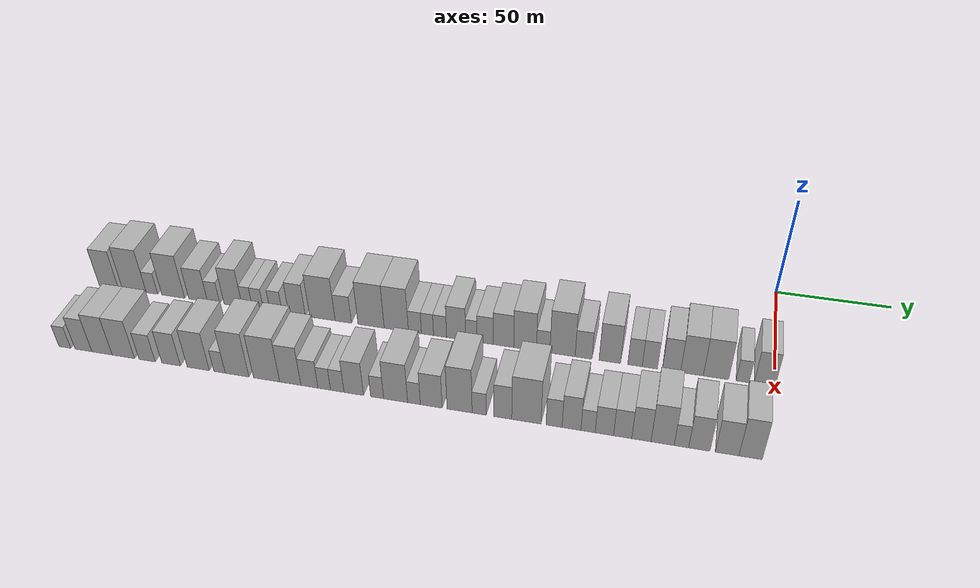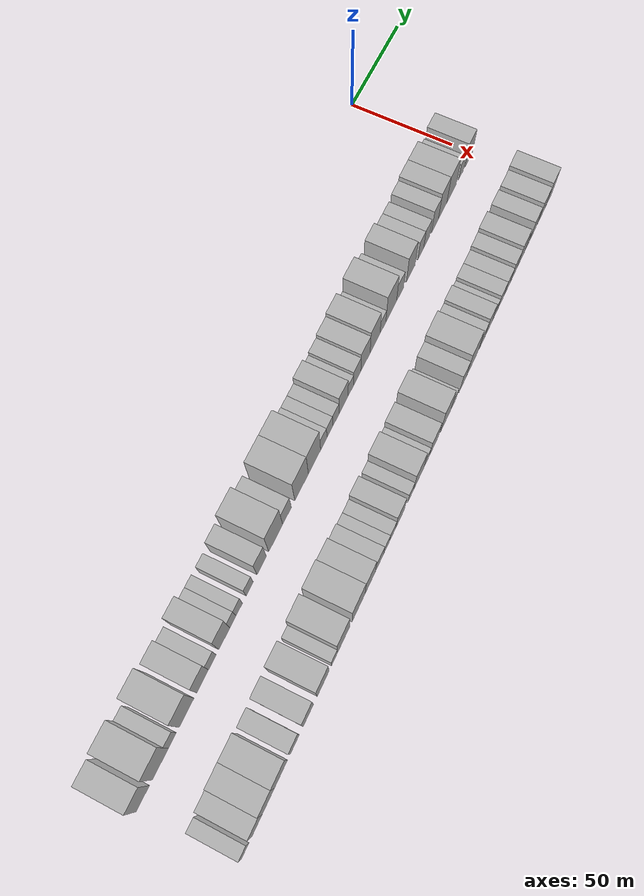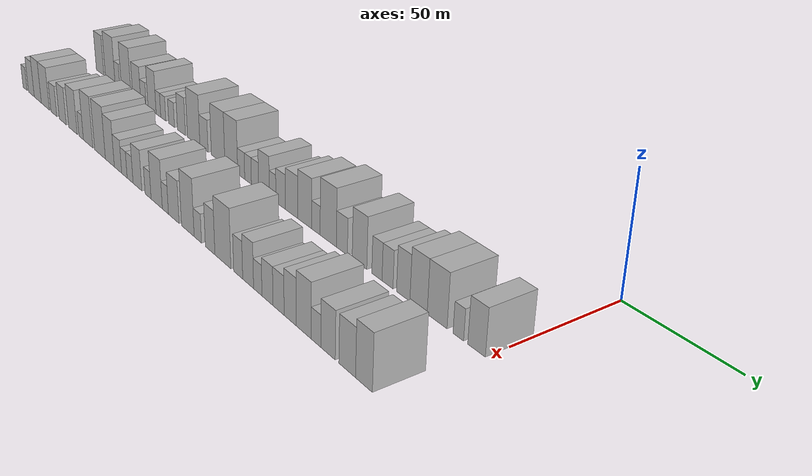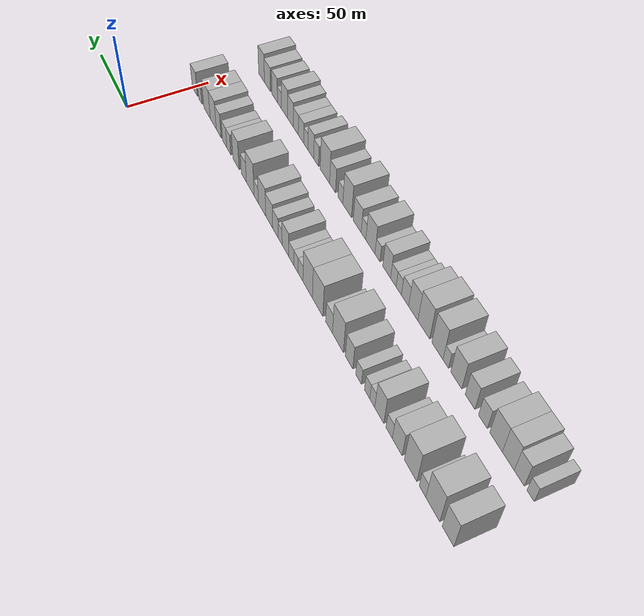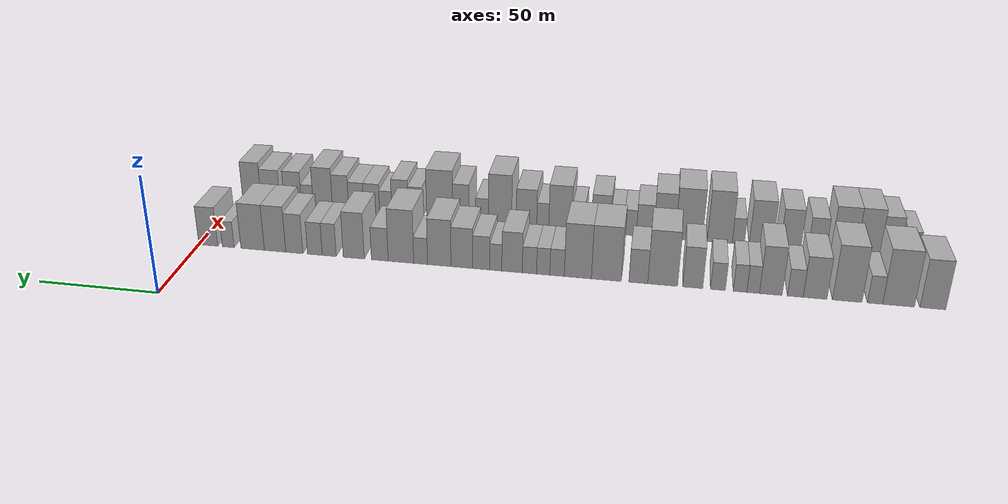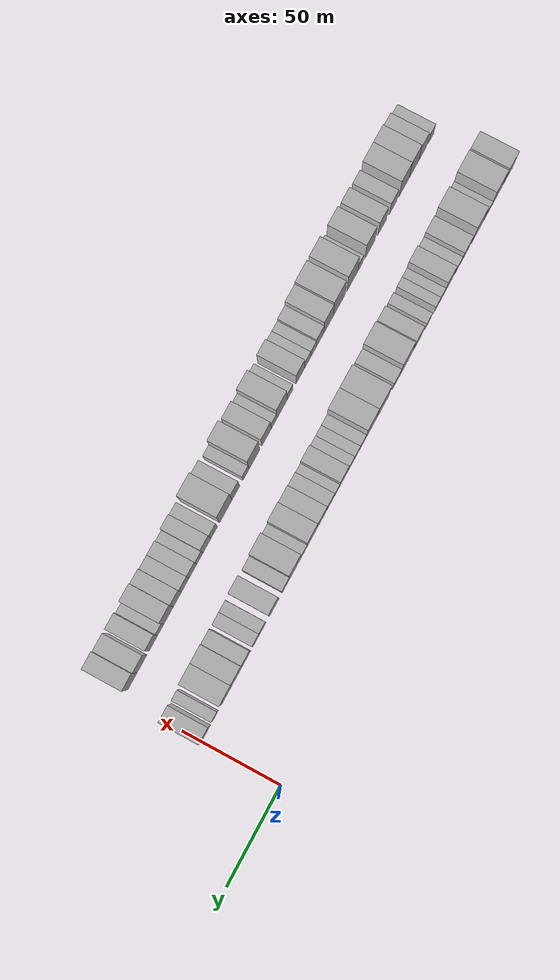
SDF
<sdf version="1.6">
 <world name="default">
  <model name="building_1">
   <static>1</static>
   <pose>50.0000 -295.3175 0 0.000000 0.000000 0.000000</pose>
   <link name="link">
    <pose>0 0 10.50 0 0 0</pose>
    <collision name="collision"><geometry><box><size>20.0000 9.3650 21.0000</size></box></geometry></collision>
    <visual name="visual">
     <cast_shadows>0</cast_shadows>
     <geometry><box><size>20.0000 9.3650 21.0000</size></box></geometry>
     <material>
      <script>
       <uri>model://HANNAS_wall/materials/scripts</uri>
       <uri>model://HANNAS_wall/materials/textures</uri>
       <name>vrc/HANNAS_wall</name>
      </script>
     </material>
    </visual>
   </link>
  </model>
  <model name="building_2">
   <static>1</static>
   <pose>50.0000 -282.8107 0 0.000000 0.000000 0.000000</pose>
   <link name="link">
    <pose>0 0 12.00 0 0 0</pose>
    <collision name="collision"><geometry><box><size>20.0000 11.6486 24.0000</size></box></geometry></collision>
    <visual name="visual">
     <cast_shadows>0</cast_shadows>
     <geometry><box><size>20.0000 11.6486 24.0000</size></box></geometry>
     <material>
      <script>
       <uri>model://HANNAS_wall/materials/scripts</uri>
       <uri>model://HANNAS_wall/materials/textures</uri>
       <name>vrc/HANNAS_wall</name>
      </script>
     </material>
    </visual>
   </link>
  </model>
  <model name="building_3">
   <static>1</static>
   <pose>50.0000 -274.1890 0 0.000000 0.000000 0.000000</pose>
   <link name="link">
    <pose>0 0 6.00 0 0 0</pose>
    <collision name="collision"><geometry><box><size>20.0000 5.5949 12.0000</size></box></geometry></collision>
    <visual name="visual">
     <cast_shadows>0</cast_shadows>
     <geometry><box><size>20.0000 5.5949 12.0000</size></box></geometry>
     <material>
      <script>
       <uri>model://HANNAS_wall/materials/scripts</uri>
       <uri>model://HANNAS_wall/materials/textures</uri>
       <name>vrc/HANNAS_wall</name>
      </script>
     </material>
    </visual>
   </link>
  </model>
  <model name="building_4">
   <static>1</static>
   <pose>50.0000 -263.8913 0 0.000000 0.000000 0.000000</pose>
   <link name="link">
    <pose>0 0 12.00 0 0 0</pose>
    <collision name="collision"><geometry><box><size>20.0000 11.0005 24.0000</size></box></geometry></collision>
    <visual name="visual">
     <cast_shadows>0</cast_shadows>
     <geometry><box><size>20.0000 11.0005 24.0000</size></box></geometry>
     <material>
      <script>
       <uri>model://HANNAS_wall/materials/scripts</uri>
       <uri>model://HANNAS_wall/materials/textures</uri>
       <name>vrc/HANNAS_wall</name>
      </script>
     </material>
    </visual>
   </link>
  </model>
  <model name="building_5">
   <static>1</static>
   <pose>50.0000 -251.9345 0 0.000000 0.000000 0.000000</pose>
   <link name="link">
    <pose>0 0 9.00 0 0 0</pose>
    <collision name="collision"><geometry><box><size>20.0000 8.9130 18.0000</size></box></geometry></collision>
    <visual name="visual">
     <cast_shadows>0</cast_shadows>
     <geometry><box><size>20.0000 8.9130 18.0000</size></box></geometry>
     <material>
      <script>
       <uri>model://HANNAS_wall/materials/scripts</uri>
       <uri>model://HANNAS_wall/materials/textures</uri>
       <name>vrc/HANNAS_wall</name>
      </script>
     </material>
    </visual>
   </link>
  </model>
  <model name="building_6">
   <static>1</static>
   <pose>50.0000 -244.5130 0 0.000000 0.000000 0.000000</pose>
   <link name="link">
    <pose>0 0 6.00 0 0 0</pose>
    <collision name="collision"><geometry><box><size>20.0000 5.9301 12.0000</size></box></geometry></collision>
    <visual name="visual">
     <cast_shadows>0</cast_shadows>
     <geometry><box><size>20.0000 5.9301 12.0000</size></box></geometry>
     <material>
      <script>
       <uri>model://HANNAS_wall/materials/scripts</uri>
       <uri>model://HANNAS_wall/materials/textures</uri>
       <name>vrc/HANNAS_wall</name>
      </script>
     </material>
    </visual>
   </link>
  </model>
  <model name="building_7">
   <static>1</static>
   <pose>50.0000 -235.2398 0 0.000000 0.000000 0.000000</pose>
   <link name="link">
    <pose>0 0 10.50 0 0 0</pose>
    <collision name="collision"><geometry><box><size>20.0000 8.6164 21.0000</size></box></geometry></collision>
    <visual name="visual">
     <cast_shadows>0</cast_shadows>
     <geometry><box><size>20.0000 8.6164 21.0000</size></box></geometry>
     <material>
      <script>
       <uri>model://HANNAS_wall/materials/scripts</uri>
       <uri>model://HANNAS_wall/materials/textures</uri>
       <name>vrc/HANNAS_wall</name>
      </script>
     </material>
    </visual>
   </link>
  </model>
  <model name="building_8">
   <static>1</static>
   <pose>50.0000 -228.5288 0 0.000000 0.000000 0.000000</pose>
   <link name="link">
    <pose>0 0 6.00 0 0 0</pose>
    <collision name="collision"><geometry><box><size>20.0000 4.8055 12.0000</size></box></geometry></collision>
    <visual name="visual">
     <cast_shadows>0</cast_shadows>
     <geometry><box><size>20.0000 4.8055 12.0000</size></box></geometry>
     <material>
      <script>
       <uri>model://HANNAS_wall/materials/scripts</uri>
       <uri>model://HANNAS_wall/materials/textures</uri>
       <name>vrc/HANNAS_wall</name>
      </script>
     </material>
    </visual>
   </link>
  </model>
  <model name="building_9">
   <static>1</static>
   <pose>50.0000 -223.5332 0 0.000000 0.000000 0.000000</pose>
   <link name="link">
    <pose>0 0 6.00 0 0 0</pose>
    <collision name="collision"><geometry><box><size>20.0000 5.1856 12.0000</size></box></geometry></collision>
    <visual name="visual">
     <cast_shadows>0</cast_shadows>
     <geometry><box><size>20.0000 5.1856 12.0000</size></box></geometry>
     <material>
      <script>
       <uri>model://HANNAS_wall/materials/scripts</uri>
       <uri>model://HANNAS_wall/materials/textures</uri>
       <name>vrc/HANNAS_wall</name>
      </script>
     </material>
    </visual>
   </link>
  </model>
  <model name="building_10">
   <static>1</static>
   <pose>50.0000 -215.0682 0 0.000000 0.000000 0.000000</pose>
   <link name="link">
    <pose>0 0 6.00 0 0 0</pose>
    <collision name="collision"><geometry><box><size>20.0000 5.7443 12.0000</size></box></geometry></collision>
    <visual name="visual">
     <cast_shadows>0</cast_shadows>
     <geometry><box><size>20.0000 5.7443 12.0000</size></box></geometry>
     <material>
      <script>
       <uri>model://HANNAS_wall/materials/scripts</uri>
       <uri>model://HANNAS_wall/materials/textures</uri>
       <name>vrc/HANNAS_wall</name>
      </script>
     </material>
    </visual>
   </link>
  </model>
  <model name="building_11">
   <static>1</static>
   <pose>50.0000 -205.3281 0 0.000000 0.000000 0.000000</pose>
   <link name="link">
    <pose>0 0 9.00 0 0 0</pose>
    <collision name="collision"><geometry><box><size>20.0000 7.7359 18.0000</size></box></geometry></collision>
    <visual name="visual">
     <cast_shadows>0</cast_shadows>
     <geometry><box><size>20.0000 7.7359 18.0000</size></box></geometry>
     <material>
      <script>
       <uri>model://HANNAS_wall/materials/scripts</uri>
       <uri>model://HANNAS_wall/materials/textures</uri>
       <name>vrc/HANNAS_wall</name>
      </script>
     </material>
    </visual>
   </link>
  </model>
  <model name="building_12">
   <static>1</static>
   <pose>50.0000 -193.6278 0 0.000000 0.000000 0.000000</pose>
   <link name="link">
    <pose>0 0 12.00 0 0 0</pose>
    <collision name="collision"><geometry><box><size>20.0000 11.6648 24.0000</size></box></geometry></collision>
    <visual name="visual">
     <cast_shadows>0</cast_shadows>
     <geometry><box><size>20.0000 11.6648 24.0000</size></box></geometry>
     <material>
      <script>
       <uri>model://HANNAS_wall/materials/scripts</uri>
       <uri>model://HANNAS_wall/materials/textures</uri>
       <name>vrc/HANNAS_wall</name>
      </script>
     </material>
    </visual>
   </link>
  </model>
  <model name="building_13">
   <static>1</static>
   <pose>50.0000 -184.0830 0 0.000000 0.000000 0.000000</pose>
   <link name="link">
    <pose>0 0 7.50 0 0 0</pose>
    <collision name="collision"><geometry><box><size>20.0000 7.4248 15.0000</size></box></geometry></collision>
    <visual name="visual">
     <cast_shadows>0</cast_shadows>
     <geometry><box><size>20.0000 7.4248 15.0000</size></box></geometry>
     <material>
      <script>
       <uri>model://HANNAS_wall/materials/scripts</uri>
       <uri>model://HANNAS_wall/materials/textures</uri>
       <name>vrc/HANNAS_wall</name>
      </script>
     </material>
    </visual>
   </link>
  </model>
  <model name="building_14">
   <static>1</static>
   <pose>50.0000 -171.4516 0 0.000000 0.000000 0.000000</pose>
   <link name="link">
    <pose>0 0 12.00 0 0 0</pose>
    <collision name="collision"><geometry><box><size>20.0000 11.8380 24.0000</size></box></geometry></collision>
    <visual name="visual">
     <cast_shadows>0</cast_shadows>
     <geometry><box><size>20.0000 11.8380 24.0000</size></box></geometry>
     <material>
      <script>
       <uri>model://HANNAS_wall/materials/scripts</uri>
       <uri>model://HANNAS_wall/materials/textures</uri>
       <name>vrc/HANNAS_wall</name>
      </script>
     </material>
    </visual>
   </link>
  </model>
  <model name="building_15">
   <static>1</static>
   <pose>50.0000 -160.0924 0 0.000000 0.000000 0.000000</pose>
   <link name="link">
    <pose>0 0 12.00 0 0 0</pose>
    <collision name="collision"><geometry><box><size>20.0000 10.8804 24.0000</size></box></geometry></collision>
    <visual name="visual">
     <cast_shadows>0</cast_shadows>
     <geometry><box><size>20.0000 10.8804 24.0000</size></box></geometry>
     <material>
      <script>
       <uri>model://HANNAS_wall/materials/scripts</uri>
       <uri>model://HANNAS_wall/materials/textures</uri>
       <name>vrc/HANNAS_wall</name>
      </script>
     </material>
    </visual>
   </link>
  </model>
  <model name="building_16">
   <static>1</static>
   <pose>50.0000 -151.7578 0 0.000000 0.000000 0.000000</pose>
   <link name="link">
    <pose>0 0 6.00 0 0 0</pose>
    <collision name="collision"><geometry><box><size>20.0000 5.7887 12.0000</size></box></geometry></collision>
    <visual name="visual">
     <cast_shadows>0</cast_shadows>
     <geometry><box><size>20.0000 5.7887 12.0000</size></box></geometry>
     <material>
      <script>
       <uri>model://HANNAS_wall/materials/scripts</uri>
       <uri>model://HANNAS_wall/materials/textures</uri>
       <name>vrc/HANNAS_wall</name>
      </script>
     </material>
    </visual>
   </link>
  </model>
  <model name="building_17">
   <static>1</static>
   <pose>50.0000 -146.1758 0 0.000000 0.000000 0.000000</pose>
   <link name="link">
    <pose>0 0 6.00 0 0 0</pose>
    <collision name="collision"><geometry><box><size>20.0000 5.3753 12.0000</size></box></geometry></collision>
    <visual name="visual">
     <cast_shadows>0</cast_shadows>
     <geometry><box><size>20.0000 5.3753 12.0000</size></box></geometry>
     <material>
      <script>
       <uri>model://HANNAS_wall/materials/scripts</uri>
       <uri>model://HANNAS_wall/materials/textures</uri>
       <name>vrc/HANNAS_wall</name>
      </script>
     </material>
    </visual>
   </link>
  </model>
  <model name="building_18">
   <static>1</static>
   <pose>50.0000 -140.6003 0 0.000000 0.000000 0.000000</pose>
   <link name="link">
    <pose>0 0 6.00 0 0 0</pose>
    <collision name="collision"><geometry><box><size>20.0000 5.7758 12.0000</size></box></geometry></collision>
    <visual name="visual">
     <cast_shadows>0</cast_shadows>
     <geometry><box><size>20.0000 5.7758 12.0000</size></box></geometry>
     <material>
      <script>
       <uri>model://HANNAS_wall/materials/scripts</uri>
       <uri>model://HANNAS_wall/materials/textures</uri>
       <name>vrc/HANNAS_wall</name>
      </script>
     </material>
    </visual>
   </link>
  </model>
  <model name="building_19">
   <static>1</static>
   <pose>50.0000 -133.5268 0 0.000000 0.000000 0.000000</pose>
   <link name="link">
    <pose>0 0 9.00 0 0 0</pose>
    <collision name="collision"><geometry><box><size>20.0000 8.3712 18.0000</size></box></geometry></collision>
    <visual name="visual">
     <cast_shadows>0</cast_shadows>
     <geometry><box><size>20.0000 8.3712 18.0000</size></box></geometry>
     <material>
      <script>
       <uri>model://HANNAS_wall/materials/scripts</uri>
       <uri>model://HANNAS_wall/materials/textures</uri>
       <name>vrc/HANNAS_wall</name>
      </script>
     </material>
    </visual>
   </link>
  </model>
  <model name="building_20">
   <static>1</static>
   <pose>50.0000 -126.8570 0 0.000000 0.000000 0.000000</pose>
   <link name="link">
    <pose>0 0 6.00 0 0 0</pose>
    <collision name="collision"><geometry><box><size>20.0000 4.9683 12.0000</size></box></geometry></collision>
    <visual name="visual">
     <cast_shadows>0</cast_shadows>
     <geometry><box><size>20.0000 4.9683 12.0000</size></box></geometry>
     <material>
      <script>
       <uri>model://HANNAS_wall/materials/scripts</uri>
       <uri>model://HANNAS_wall/materials/textures</uri>
       <name>vrc/HANNAS_wall</name>
      </script>
     </material>
    </visual>
   </link>
  </model>
  <model name="building_21">
   <static>1</static>
   <pose>50.0000 -120.8502 0 0.000000 0.000000 0.000000</pose>
   <link name="link">
    <pose>0 0 7.50 0 0 0</pose>
    <collision name="collision"><geometry><box><size>20.0000 7.0453 15.0000</size></box></geometry></collision>
    <visual name="visual">
     <cast_shadows>0</cast_shadows>
     <geometry><box><size>20.0000 7.0453 15.0000</size></box></geometry>
     <material>
      <script>
       <uri>model://HANNAS_wall/materials/scripts</uri>
       <uri>model://HANNAS_wall/materials/textures</uri>
       <name>vrc/HANNAS_wall</name>
      </script>
     </material>
    </visual>
   </link>
  </model>
  <model name="building_22">
   <static>1</static>
   <pose>50.0000 -112.8907 0 0.000000 0.000000 0.000000</pose>
   <link name="link">
    <pose>0 0 9.00 0 0 0</pose>
    <collision name="collision"><geometry><box><size>20.0000 8.8738 18.0000</size></box></geometry></collision>
    <visual name="visual">
     <cast_shadows>0</cast_shadows>
     <geometry><box><size>20.0000 8.8738 18.0000</size></box></geometry>
     <material>
      <script>
       <uri>model://HANNAS_wall/materials/scripts</uri>
       <uri>model://HANNAS_wall/materials/textures</uri>
       <name>vrc/HANNAS_wall</name>
      </script>
     </material>
    </visual>
   </link>
  </model>
  <model name="building_23">
   <static>1</static>
   <pose>50.0000 -103.5695 0 0.000000 0.000000 0.000000</pose>
   <link name="link">
    <pose>0 0 10.50 0 0 0</pose>
    <collision name="collision"><geometry><box><size>20.0000 9.7686 21.0000</size></box></geometry></collision>
    <visual name="visual">
     <cast_shadows>0</cast_shadows>
     <geometry><box><size>20.0000 9.7686 21.0000</size></box></geometry>
     <material>
      <script>
       <uri>model://HANNAS_wall/materials/scripts</uri>
       <uri>model://HANNAS_wall/materials/textures</uri>
       <name>vrc/HANNAS_wall</name>
      </script>
     </material>
    </visual>
   </link>
  </model>
  <model name="building_24">
   <static>1</static>
   <pose>50.0000 -95.7986 0 0.000000 0.000000 0.000000</pose>
   <link name="link">
    <pose>0 0 6.00 0 0 0</pose>
    <collision name="collision"><geometry><box><size>20.0000 5.7732 12.0000</size></box></geometry></collision>
    <visual name="visual">
     <cast_shadows>0</cast_shadows>
     <geometry><box><size>20.0000 5.7732 12.0000</size></box></geometry>
     <material>
      <script>
       <uri>model://HANNAS_wall/materials/scripts</uri>
       <uri>model://HANNAS_wall/materials/textures</uri>
       <name>vrc/HANNAS_wall</name>
      </script>
     </material>
    </visual>
   </link>
  </model>
  <model name="building_25">
   <static>1</static>
   <pose>50.0000 -87.5383 0 0.000000 0.000000 0.000000</pose>
   <link name="link">
    <pose>0 0 12.00 0 0 0</pose>
    <collision name="collision"><geometry><box><size>20.0000 10.7474 24.0000</size></box></geometry></collision>
    <visual name="visual">
     <cast_shadows>0</cast_shadows>
     <geometry><box><size>20.0000 10.7474 24.0000</size></box></geometry>
     <material>
      <script>
       <uri>model://HANNAS_wall/materials/scripts</uri>
       <uri>model://HANNAS_wall/materials/textures</uri>
       <name>vrc/HANNAS_wall</name>
      </script>
     </material>
    </visual>
   </link>
  </model>
  <model name="building_26">
   <static>1</static>
   <pose>50.0000 -78.6126 0 0.000000 0.000000 0.000000</pose>
   <link name="link">
    <pose>0 0 7.50 0 0 0</pose>
    <collision name="collision"><geometry><box><size>20.0000 7.1039 15.0000</size></box></geometry></collision>
    <visual name="visual">
     <cast_shadows>0</cast_shadows>
     <geometry><box><size>20.0000 7.1039 15.0000</size></box></geometry>
     <material>
      <script>
       <uri>model://HANNAS_wall/materials/scripts</uri>
       <uri>model://HANNAS_wall/materials/textures</uri>
       <name>vrc/HANNAS_wall</name>
      </script>
     </material>
    </visual>
   </link>
  </model>
  <model name="building_27">
   <static>1</static>
   <pose>50.0000 -67.5679 0 0.000000 0.000000 0.000000</pose>
   <link name="link">
    <pose>0 0 10.50 0 0 0</pose>
    <collision name="collision"><geometry><box><size>20.0000 8.9856 21.0000</size></box></geometry></collision>
    <visual name="visual">
     <cast_shadows>0</cast_shadows>
     <geometry><box><size>20.0000 8.9856 21.0000</size></box></geometry>
     <material>
      <script>
       <uri>model://HANNAS_wall/materials/scripts</uri>
       <uri>model://HANNAS_wall/materials/textures</uri>
       <name>vrc/HANNAS_wall</name>
      </script>
     </material>
    </visual>
   </link>
  </model>
  <model name="building_28">
   <static>1</static>
   <pose>50.0000 -57.0685 0 0.000000 0.000000 0.000000</pose>
   <link name="link">
    <pose>0 0 7.50 0 0 0</pose>
    <collision name="collision"><geometry><box><size>20.0000 6.0131 15.0000</size></box></geometry></collision>
    <visual name="visual">
     <cast_shadows>0</cast_shadows>
     <geometry><box><size>20.0000 6.0131 15.0000</size></box></geometry>
     <material>
      <script>
       <uri>model://HANNAS_wall/materials/scripts</uri>
       <uri>model://HANNAS_wall/materials/textures</uri>
       <name>vrc/HANNAS_wall</name>
      </script>
     </material>
    </visual>
   </link>
  </model>
  <model name="building_29">
   <static>1</static>
   <pose>50.0000 -50.8885 0 0.000000 0.000000 0.000000</pose>
   <link name="link">
    <pose>0 0 7.50 0 0 0</pose>
    <collision name="collision"><geometry><box><size>20.0000 6.3470 15.0000</size></box></geometry></collision>
    <visual name="visual">
     <cast_shadows>0</cast_shadows>
     <geometry><box><size>20.0000 6.3470 15.0000</size></box></geometry>
     <material>
      <script>
       <uri>model://HANNAS_wall/materials/scripts</uri>
       <uri>model://HANNAS_wall/materials/textures</uri>
       <name>vrc/HANNAS_wall</name>
      </script>
     </material>
    </visual>
   </link>
  </model>
  <model name="building_30">
   <static>1</static>
   <pose>50.0000 -41.9861 0 0.000000 0.000000 0.000000</pose>
   <link name="link">
    <pose>0 0 9.00 0 0 0</pose>
    <collision name="collision"><geometry><box><size>20.0000 7.4578 18.0000</size></box></geometry></collision>
    <visual name="visual">
     <cast_shadows>0</cast_shadows>
     <geometry><box><size>20.0000 7.4578 18.0000</size></box></geometry>
     <material>
      <script>
       <uri>model://HANNAS_wall/materials/scripts</uri>
       <uri>model://HANNAS_wall/materials/textures</uri>
       <name>vrc/HANNAS_wall</name>
      </script>
     </material>
    </visual>
   </link>
  </model>
  <model name="building_31">
   <static>1</static>
   <pose>50.0000 -33.5933 0 0.000000 0.000000 0.000000</pose>
   <link name="link">
    <pose>0 0 10.50 0 0 0</pose>
    <collision name="collision"><geometry><box><size>20.0000 9.3279 21.0000</size></box></geometry></collision>
    <visual name="visual">
     <cast_shadows>0</cast_shadows>
     <geometry><box><size>20.0000 9.3279 21.0000</size></box></geometry>
     <material>
      <script>
       <uri>model://HANNAS_wall/materials/scripts</uri>
       <uri>model://HANNAS_wall/materials/textures</uri>
       <name>vrc/HANNAS_wall</name>
      </script>
     </material>
    </visual>
   </link>
  </model>
  <model name="building_32">
   <static>1</static>
   <pose>50.0000 -23.7865 0 0.000000 0.000000 0.000000</pose>
   <link name="link">
    <pose>0 0 10.50 0 0 0</pose>
    <collision name="collision"><geometry><box><size>20.0000 10.2857 21.0000</size></box></geometry></collision>
    <visual name="visual">
     <cast_shadows>0</cast_shadows>
     <geometry><box><size>20.0000 10.2857 21.0000</size></box></geometry>
     <material>
      <script>
       <uri>model://HANNAS_wall/materials/scripts</uri>
       <uri>model://HANNAS_wall/materials/textures</uri>
       <name>vrc/HANNAS_wall</name>
      </script>
     </material>
    </visual>
   </link>
  </model>
  <model name="building_33">
   <static>1</static>
   <pose>50.0000 -13.0210 0 0.000000 0.000000 0.000000</pose>
   <link name="link">
    <pose>0 0 6.00 0 0 0</pose>
    <collision name="collision"><geometry><box><size>20.0000 5.2452 12.0000</size></box></geometry></collision>
    <visual name="visual">
     <cast_shadows>0</cast_shadows>
     <geometry><box><size>20.0000 5.2452 12.0000</size></box></geometry>
     <material>
      <script>
       <uri>model://HANNAS_wall/materials/scripts</uri>
       <uri>model://HANNAS_wall/materials/textures</uri>
       <name>vrc/HANNAS_wall</name>
      </script>
     </material>
    </visual>
   </link>
  </model>
  <model name="building_34">
   <static>1</static>
   <pose>50.0000 -4.1912 0 0.000000 0.000000 0.000000</pose>
   <link name="link">
    <pose>0 0 9.00 0 0 0</pose>
    <collision name="collision"><geometry><box><size>20.0000 8.4145 18.0000</size></box></geometry></collision>
    <visual name="visual">
     <cast_shadows>0</cast_shadows>
     <geometry><box><size>20.0000 8.4145 18.0000</size></box></geometry>
     <material>
      <script>
       <uri>model://HANNAS_wall/materials/scripts</uri>
       <uri>model://HANNAS_wall/materials/textures</uri>
       <name>vrc/HANNAS_wall</name>
      </script>
     </material>
    </visual>
   </link>
  </model>
  <model name="building_69">
   <static>1</static>
   <pose>90.0000 -294.2524 0 0.000000 0.000000 0.000000</pose>
   <link name="link">
    <pose>0 0 6.00 0 0 0</pose>
    <collision name="collision"><geometry><box><size>20.0000 5.4952 12.0000</size></box></geometry></collision>
    <visual name="visual">
     <cast_shadows>0</cast_shadows>
     <geometry><box><size>20.0000 5.4952 12.0000</size></box></geometry>
     <material>
      <script>
       <uri>model://HANNAS_wall/materials/scripts</uri>
       <uri>model://HANNAS_wall/materials/textures</uri>
       <name>vrc/HANNAS_wall</name>
      </script>
     </material>
    </visual>
   </link>
  </model>
  <model name="building_70">
   <static>1</static>
   <pose>90.0000 -285.6270 0 0.000000 0.000000 0.000000</pose>
   <link name="link">
    <pose>0 0 9.00 0 0 0</pose>
    <collision name="collision"><geometry><box><size>20.0000 7.7557 18.0000</size></box></geometry></collision>
    <visual name="visual">
     <cast_shadows>0</cast_shadows>
     <geometry><box><size>20.0000 7.7557 18.0000</size></box></geometry>
     <material>
      <script>
       <uri>model://HANNAS_wall/materials/scripts</uri>
       <uri>model://HANNAS_wall/materials/textures</uri>
       <name>vrc/HANNAS_wall</name>
      </script>
     </material>
    </visual>
   </link>
  </model>
  <model name="building_71">
   <static>1</static>
   <pose>90.0000 -277.0891 0 0.000000 0.000000 0.000000</pose>
   <link name="link">
    <pose>0 0 10.50 0 0 0</pose>
    <collision name="collision"><geometry><box><size>20.0000 9.3201 21.0000</size></box></geometry></collision>
    <visual name="visual">
     <cast_shadows>0</cast_shadows>
     <geometry><box><size>20.0000 9.3201 21.0000</size></box></geometry>
     <material>
      <script>
       <uri>model://HANNAS_wall/materials/scripts</uri>
       <uri>model://HANNAS_wall/materials/textures</uri>
       <name>vrc/HANNAS_wall</name>
      </script>
     </material>
    </visual>
   </link>
  </model>
  <model name="building_72">
   <static>1</static>
   <pose>90.0000 -267.3088 0 0.000000 0.000000 0.000000</pose>
   <link name="link">
    <pose>0 0 10.50 0 0 0</pose>
    <collision name="collision"><geometry><box><size>20.0000 10.2406 21.0000</size></box></geometry></collision>
    <visual name="visual">
     <cast_shadows>0</cast_shadows>
     <geometry><box><size>20.0000 10.2406 21.0000</size></box></geometry>
     <material>
      <script>
       <uri>model://HANNAS_wall/materials/scripts</uri>
       <uri>model://HANNAS_wall/materials/textures</uri>
       <name>vrc/HANNAS_wall</name>
      </script>
     </material>
    </visual>
   </link>
  </model>
  <model name="building_73">
   <static>1</static>
   <pose>90.0000 -256.5324 0 0.000000 0.000000 0.000000</pose>
   <link name="link">
    <pose>0 0 7.50 0 0 0</pose>
    <collision name="collision"><geometry><box><size>20.0000 7.3120 15.0000</size></box></geometry></collision>
    <visual name="visual">
     <cast_shadows>0</cast_shadows>
     <geometry><box><size>20.0000 7.3120 15.0000</size></box></geometry>
     <material>
      <script>
       <uri>model://HANNAS_wall/materials/scripts</uri>
       <uri>model://HANNAS_wall/materials/textures</uri>
       <name>vrc/HANNAS_wall</name>
      </script>
     </material>
    </visual>
   </link>
  </model>
  <model name="building_74">
   <static>1</static>
   <pose>90.0000 -245.6885 0 0.000000 0.000000 0.000000</pose>
   <link name="link">
    <pose>0 0 9.00 0 0 0</pose>
    <collision name="collision"><geometry><box><size>20.0000 8.3760 18.0000</size></box></geometry></collision>
    <visual name="visual">
     <cast_shadows>0</cast_shadows>
     <geometry><box><size>20.0000 8.3760 18.0000</size></box></geometry>
     <material>
      <script>
       <uri>model://HANNAS_wall/materials/scripts</uri>
       <uri>model://HANNAS_wall/materials/textures</uri>
       <name>vrc/HANNAS_wall</name>
      </script>
     </material>
    </visual>
   </link>
  </model>
  <model name="building_75">
   <static>1</static>
   <pose>90.0000 -233.5897 0 0.000000 0.000000 0.000000</pose>
   <link name="link">
    <pose>0 0 10.50 0 0 0</pose>
    <collision name="collision"><geometry><box><size>20.0000 9.8216 21.0000</size></box></geometry></collision>
    <visual name="visual">
     <cast_shadows>0</cast_shadows>
     <geometry><box><size>20.0000 9.8216 21.0000</size></box></geometry>
     <material>
      <script>
       <uri>model://HANNAS_wall/materials/scripts</uri>
       <uri>model://HANNAS_wall/materials/textures</uri>
       <name>vrc/HANNAS_wall</name>
      </script>
     </material>
    </visual>
   </link>
  </model>
  <model name="building_76">
   <static>1</static>
   <pose>90.0000 -224.1726 0 0.000000 0.000000 0.000000</pose>
   <link name="link">
    <pose>0 0 6.00 0 0 0</pose>
    <collision name="collision"><geometry><box><size>20.0000 5.0125 12.0000</size></box></geometry></collision>
    <visual name="visual">
     <cast_shadows>0</cast_shadows>
     <geometry><box><size>20.0000 5.0125 12.0000</size></box></geometry>
     <material>
      <script>
       <uri>model://HANNAS_wall/materials/scripts</uri>
       <uri>model://HANNAS_wall/materials/textures</uri>
       <name>vrc/HANNAS_wall</name>
      </script>
     </material>
    </visual>
   </link>
  </model>
  <model name="building_77">
   <static>1</static>
   <pose>90.0000 -216.4661 0 0.000000 0.000000 0.000000</pose>
   <link name="link">
    <pose>0 0 12.00 0 0 0</pose>
    <collision name="collision"><geometry><box><size>20.0000 10.4005 24.0000</size></box></geometry></collision>
    <visual name="visual">
     <cast_shadows>0</cast_shadows>
     <geometry><box><size>20.0000 10.4005 24.0000</size></box></geometry>
     <material>
      <script>
       <uri>model://HANNAS_wall/materials/scripts</uri>
       <uri>model://HANNAS_wall/materials/textures</uri>
       <name>vrc/HANNAS_wall</name>
      </script>
     </material>
    </visual>
   </link>
  </model>
  <model name="building_78">
   <static>1</static>
   <pose>90.0000 -203.5819 0 0.000000 0.000000 0.000000</pose>
   <link name="link">
    <pose>0 0 12.00 0 0 0</pose>
    <collision name="collision"><geometry><box><size>20.0000 11.3679 24.0000</size></box></geometry></collision>
    <visual name="visual">
     <cast_shadows>0</cast_shadows>
     <geometry><box><size>20.0000 11.3679 24.0000</size></box></geometry>
     <material>
      <script>
       <uri>model://HANNAS_wall/materials/scripts</uri>
       <uri>model://HANNAS_wall/materials/textures</uri>
       <name>vrc/HANNAS_wall</name>
      </script>
     </material>
    </visual>
   </link>
  </model>
  <model name="building_79">
   <static>1</static>
   <pose>90.0000 -193.3113 0 0.000000 0.000000 0.000000</pose>
   <link name="link">
    <pose>0 0 10.50 0 0 0</pose>
    <collision name="collision"><geometry><box><size>20.0000 9.1733 21.0000</size></box></geometry></collision>
    <visual name="visual">
     <cast_shadows>0</cast_shadows>
     <geometry><box><size>20.0000 9.1733 21.0000</size></box></geometry>
     <material>
      <script>
       <uri>model://HANNAS_wall/materials/scripts</uri>
       <uri>model://HANNAS_wall/materials/textures</uri>
       <name>vrc/HANNAS_wall</name>
      </script>
     </material>
    </visual>
   </link>
  </model>
  <model name="building_80">
   <static>1</static>
   <pose>90.0000 -185.0576 0 0.000000 0.000000 0.000000</pose>
   <link name="link">
    <pose>0 0 7.50 0 0 0</pose>
    <collision name="collision"><geometry><box><size>20.0000 7.3341 15.0000</size></box></geometry></collision>
    <visual name="visual">
     <cast_shadows>0</cast_shadows>
     <geometry><box><size>20.0000 7.3341 15.0000</size></box></geometry>
     <material>
      <script>
       <uri>model://HANNAS_wall/materials/scripts</uri>
       <uri>model://HANNAS_wall/materials/textures</uri>
       <name>vrc/HANNAS_wall</name>
      </script>
     </material>
    </visual>
   </link>
  </model>
  <model name="building_81">
   <static>1</static>
   <pose>90.0000 -178.7155 0 0.000000 0.000000 0.000000</pose>
   <link name="link">
    <pose>0 0 6.00 0 0 0</pose>
    <collision name="collision"><geometry><box><size>20.0000 5.3502 12.0000</size></box></geometry></collision>
    <visual name="visual">
     <cast_shadows>0</cast_shadows>
     <geometry><box><size>20.0000 5.3502 12.0000</size></box></geometry>
     <material>
      <script>
       <uri>model://HANNAS_wall/materials/scripts</uri>
       <uri>model://HANNAS_wall/materials/textures</uri>
       <name>vrc/HANNAS_wall</name>
      </script>
     </material>
    </visual>
   </link>
  </model>
  <model name="building_82">
   <static>1</static>
   <pose>90.0000 -173.1819 0 0.000000 0.000000 0.000000</pose>
   <link name="link">
    <pose>0 0 6.00 0 0 0</pose>
    <collision name="collision"><geometry><box><size>20.0000 5.7169 12.0000</size></box></geometry></collision>
    <visual name="visual">
     <cast_shadows>0</cast_shadows>
     <geometry><box><size>20.0000 5.7169 12.0000</size></box></geometry>
     <material>
      <script>
       <uri>model://HANNAS_wall/materials/scripts</uri>
       <uri>model://HANNAS_wall/materials/textures</uri>
       <name>vrc/HANNAS_wall</name>
      </script>
     </material>
    </visual>
   </link>
  </model>
  <model name="building_83">
   <static>1</static>
   <pose>90.0000 -166.1956 0 0.000000 0.000000 0.000000</pose>
   <link name="link">
    <pose>0 0 9.00 0 0 0</pose>
    <collision name="collision"><geometry><box><size>20.0000 8.2558 18.0000</size></box></geometry></collision>
    <visual name="visual">
     <cast_shadows>0</cast_shadows>
     <geometry><box><size>20.0000 8.2558 18.0000</size></box></geometry>
     <material>
      <script>
       <uri>model://HANNAS_wall/materials/scripts</uri>
       <uri>model://HANNAS_wall/materials/textures</uri>
       <name>vrc/HANNAS_wall</name>
      </script>
     </material>
    </visual>
   </link>
  </model>
  <model name="building_84">
   <static>1</static>
   <pose>90.0000 -156.3511 0 0.000000 0.000000 0.000000</pose>
   <link name="link">
    <pose>0 0 6.00 0 0 0</pose>
    <collision name="collision"><geometry><box><size>20.0000 5.4332 12.0000</size></box></geometry></collision>
    <visual name="visual">
     <cast_shadows>0</cast_shadows>
     <geometry><box><size>20.0000 5.4332 12.0000</size></box></geometry>
     <material>
      <script>
       <uri>model://HANNAS_wall/materials/scripts</uri>
       <uri>model://HANNAS_wall/materials/textures</uri>
       <name>vrc/HANNAS_wall</name>
      </script>
     </material>
    </visual>
   </link>
  </model>
  <model name="building_85">
   <static>1</static>
   <pose>90.0000 -148.6413 0 0.000000 0.000000 0.000000</pose>
   <link name="link">
    <pose>0 0 10.50 0 0 0</pose>
    <collision name="collision"><geometry><box><size>20.0000 9.9862 21.0000</size></box></geometry></collision>
    <visual name="visual">
     <cast_shadows>0</cast_shadows>
     <geometry><box><size>20.0000 9.9862 21.0000</size></box></geometry>
     <material>
      <script>
       <uri>model://HANNAS_wall/materials/scripts</uri>
       <uri>model://HANNAS_wall/materials/textures</uri>
       <name>vrc/HANNAS_wall</name>
      </script>
     </material>
    </visual>
   </link>
  </model>
  <model name="building_86">
   <static>1</static>
   <pose>90.0000 -141.0198 0 0.000000 0.000000 0.000000</pose>
   <link name="link">
    <pose>0 0 6.00 0 0 0</pose>
    <collision name="collision"><geometry><box><size>20.0000 5.2568 12.0000</size></box></geometry></collision>
    <visual name="visual">
     <cast_shadows>0</cast_shadows>
     <geometry><box><size>20.0000 5.2568 12.0000</size></box></geometry>
     <material>
      <script>
       <uri>model://HANNAS_wall/materials/scripts</uri>
       <uri>model://HANNAS_wall/materials/textures</uri>
       <name>vrc/HANNAS_wall</name>
      </script>
     </material>
    </visual>
   </link>
  </model>
  <model name="building_87">
   <static>1</static>
   <pose>90.0000 -133.8936 0 0.000000 0.000000 0.000000</pose>
   <link name="link">
    <pose>0 0 9.00 0 0 0</pose>
    <collision name="collision"><geometry><box><size>20.0000 8.9955 18.0000</size></box></geometry></collision>
    <visual name="visual">
     <cast_shadows>0</cast_shadows>
     <geometry><box><size>20.0000 8.9955 18.0000</size></box></geometry>
     <material>
      <script>
       <uri>model://HANNAS_wall/materials/scripts</uri>
       <uri>model://HANNAS_wall/materials/textures</uri>
       <name>vrc/HANNAS_wall</name>
      </script>
     </material>
    </visual>
   </link>
  </model>
  <model name="building_88">
   <static>1</static>
   <pose>90.0000 -122.2873 0 0.000000 0.000000 0.000000</pose>
   <link name="link">
    <pose>0 0 12.00 0 0 0</pose>
    <collision name="collision"><geometry><box><size>20.0000 10.2171 24.0000</size></box></geometry></collision>
    <visual name="visual">
     <cast_shadows>0</cast_shadows>
     <geometry><box><size>20.0000 10.2171 24.0000</size></box></geometry>
     <material>
      <script>
       <uri>model://HANNAS_wall/materials/scripts</uri>
       <uri>model://HANNAS_wall/materials/textures</uri>
       <name>vrc/HANNAS_wall</name>
      </script>
     </material>
    </visual>
   </link>
  </model>
  <model name="building_89">
   <static>1</static>
   <pose>90.0000 -114.2989 0 0.000000 0.000000 0.000000</pose>
   <link name="link">
    <pose>0 0 6.00 0 0 0</pose>
    <collision name="collision"><geometry><box><size>20.0000 5.7598 12.0000</size></box></geometry></collision>
    <visual name="visual">
     <cast_shadows>0</cast_shadows>
     <geometry><box><size>20.0000 5.7598 12.0000</size></box></geometry>
     <material>
      <script>
       <uri>model://HANNAS_wall/materials/scripts</uri>
       <uri>model://HANNAS_wall/materials/textures</uri>
       <name>vrc/HANNAS_wall</name>
      </script>
     </material>
    </visual>
   </link>
  </model>
  <model name="building_90">
   <static>1</static>
   <pose>90.0000 -104.7955 0 0.000000 0.000000 0.000000</pose>
   <link name="link">
    <pose>0 0 9.00 0 0 0</pose>
    <collision name="collision"><geometry><box><size>20.0000 7.2471 18.0000</size></box></geometry></collision>
    <visual name="visual">
     <cast_shadows>0</cast_shadows>
     <geometry><box><size>20.0000 7.2471 18.0000</size></box></geometry>
     <material>
      <script>
       <uri>model://HANNAS_wall/materials/scripts</uri>
       <uri>model://HANNAS_wall/materials/textures</uri>
       <name>vrc/HANNAS_wall</name>
      </script>
     </material>
    </visual>
   </link>
  </model>
  <model name="building_91">
   <static>1</static>
   <pose>90.0000 -95.3207 0 0.000000 0.000000 0.000000</pose>
   <link name="link">
    <pose>0 0 12.00 0 0 0</pose>
    <collision name="collision"><geometry><box><size>20.0000 11.7026 24.0000</size></box></geometry></collision>
    <visual name="visual">
     <cast_shadows>0</cast_shadows>
     <geometry><box><size>20.0000 11.7026 24.0000</size></box></geometry>
     <material>
      <script>
       <uri>model://HANNAS_wall/materials/scripts</uri>
       <uri>model://HANNAS_wall/materials/textures</uri>
       <name>vrc/HANNAS_wall</name>
      </script>
     </material>
    </visual>
   </link>
  </model>
  <model name="building_92">
   <static>1</static>
   <pose>90.0000 -84.2994 0 0.000000 0.000000 0.000000</pose>
   <link name="link">
    <pose>0 0 7.50 0 0 0</pose>
    <collision name="collision"><geometry><box><size>20.0000 6.3399 15.0000</size></box></geometry></collision>
    <visual name="visual">
     <cast_shadows>0</cast_shadows>
     <geometry><box><size>20.0000 6.3399 15.0000</size></box></geometry>
     <material>
      <script>
       <uri>model://HANNAS_wall/materials/scripts</uri>
       <uri>model://HANNAS_wall/materials/textures</uri>
       <name>vrc/HANNAS_wall</name>
      </script>
     </material>
    </visual>
   </link>
  </model>
  <model name="building_93">
   <static>1</static>
   <pose>90.0000 -77.4099 0 0.000000 0.000000 0.000000</pose>
   <link name="link">
    <pose>0 0 9.00 0 0 0</pose>
    <collision name="collision"><geometry><box><size>20.0000 7.4392 18.0000</size></box></geometry></collision>
    <visual name="visual">
     <cast_shadows>0</cast_shadows>
     <geometry><box><size>20.0000 7.4392 18.0000</size></box></geometry>
     <material>
      <script>
       <uri>model://HANNAS_wall/materials/scripts</uri>
       <uri>model://HANNAS_wall/materials/textures</uri>
       <name>vrc/HANNAS_wall</name>
      </script>
     </material>
    </visual>
   </link>
  </model>
  <model name="building_94">
   <static>1</static>
   <pose>90.0000 -70.8987 0 0.000000 0.000000 0.000000</pose>
   <link name="link">
    <pose>0 0 6.00 0 0 0</pose>
    <collision name="collision"><geometry><box><size>20.0000 5.5832 12.0000</size></box></geometry></collision>
    <visual name="visual">
     <cast_shadows>0</cast_shadows>
     <geometry><box><size>20.0000 5.5832 12.0000</size></box></geometry>
     <material>
      <script>
       <uri>model://HANNAS_wall/materials/scripts</uri>
       <uri>model://HANNAS_wall/materials/textures</uri>
       <name>vrc/HANNAS_wall</name>
      </script>
     </material>
    </visual>
   </link>
  </model>
  <model name="building_95">
   <static>1</static>
   <pose>90.0000 -64.5202 0 0.000000 0.000000 0.000000</pose>
   <link name="link">
    <pose>0 0 7.50 0 0 0</pose>
    <collision name="collision"><geometry><box><size>20.0000 7.1737 15.0000</size></box></geometry></collision>
    <visual name="visual">
     <cast_shadows>0</cast_shadows>
     <geometry><box><size>20.0000 7.1737 15.0000</size></box></geometry>
     <material>
      <script>
       <uri>model://HANNAS_wall/materials/scripts</uri>
       <uri>model://HANNAS_wall/materials/textures</uri>
       <name>vrc/HANNAS_wall</name>
      </script>
     </material>
    </visual>
   </link>
  </model>
  <model name="building_96">
   <static>1</static>
   <pose>90.0000 -57.4149 0 0.000000 0.000000 0.000000</pose>
   <link name="link">
    <pose>0 0 7.50 0 0 0</pose>
    <collision name="collision"><geometry><box><size>20.0000 7.0369 15.0000</size></box></geometry></collision>
    <visual name="visual">
     <cast_shadows>0</cast_shadows>
     <geometry><box><size>20.0000 7.0369 15.0000</size></box></geometry>
     <material>
      <script>
       <uri>model://HANNAS_wall/materials/scripts</uri>
       <uri>model://HANNAS_wall/materials/textures</uri>
       <name>vrc/HANNAS_wall</name>
      </script>
     </material>
    </visual>
   </link>
  </model>
  <model name="building_97">
   <static>1</static>
   <pose>90.0000 -50.1723 0 0.000000 0.000000 0.000000</pose>
   <link name="link">
    <pose>0 0 9.00 0 0 0</pose>
    <collision name="collision"><geometry><box><size>20.0000 7.4483 18.0000</size></box></geometry></collision>
    <visual name="visual">
     <cast_shadows>0</cast_shadows>
     <geometry><box><size>20.0000 7.4483 18.0000</size></box></geometry>
     <material>
      <script>
       <uri>model://HANNAS_wall/materials/scripts</uri>
       <uri>model://HANNAS_wall/materials/textures</uri>
       <name>vrc/HANNAS_wall</name>
      </script>
     </material>
    </visual>
   </link>
  </model>
  <model name="building_98">
   <static>1</static>
   <pose>90.0000 -42.0016 0 0.000000 0.000000 0.000000</pose>
   <link name="link">
    <pose>0 0 10.50 0 0 0</pose>
    <collision name="collision"><geometry><box><size>20.0000 8.8931 21.0000</size></box></geometry></collision>
    <visual name="visual">
     <cast_shadows>0</cast_shadows>
     <geometry><box><size>20.0000 8.8931 21.0000</size></box></geometry>
     <material>
      <script>
       <uri>model://HANNAS_wall/materials/scripts</uri>
       <uri>model://HANNAS_wall/materials/textures</uri>
       <name>vrc/HANNAS_wall</name>
      </script>
     </material>
    </visual>
   </link>
  </model>
  <model name="building_99">
   <static>1</static>
   <pose>90.0000 -34.8102 0 0.000000 0.000000 0.000000</pose>
   <link name="link">
    <pose>0 0 6.00 0 0 0</pose>
    <collision name="collision"><geometry><box><size>20.0000 5.4897 12.0000</size></box></geometry></collision>
    <visual name="visual">
     <cast_shadows>0</cast_shadows>
     <geometry><box><size>20.0000 5.4897 12.0000</size></box></geometry>
     <material>
      <script>
       <uri>model://HANNAS_wall/materials/scripts</uri>
       <uri>model://HANNAS_wall/materials/textures</uri>
       <name>vrc/HANNAS_wall</name>
      </script>
     </material>
    </visual>
   </link>
  </model>
  <model name="building_100">
   <static>1</static>
   <pose>90.0000 -28.0210 0 0.000000 0.000000 0.000000</pose>
   <link name="link">
    <pose>0 0 9.00 0 0 0</pose>
    <collision name="collision"><geometry><box><size>20.0000 8.0886 18.0000</size></box></geometry></collision>
    <visual name="visual">
     <cast_shadows>0</cast_shadows>
     <geometry><box><size>20.0000 8.0886 18.0000</size></box></geometry>
     <material>
      <script>
       <uri>model://HANNAS_wall/materials/scripts</uri>
       <uri>model://HANNAS_wall/materials/textures</uri>
       <name>vrc/HANNAS_wall</name>
      </script>
     </material>
    </visual>
   </link>
  </model>
  <model name="building_101">
   <static>1</static>
   <pose>90.0000 -17.5267 0 0.000000 0.000000 0.000000</pose>
   <link name="link">
    <pose>0 0 9.00 0 0 0</pose>
    <collision name="collision"><geometry><box><size>20.0000 8.9002 18.0000</size></box></geometry></collision>
    <visual name="visual">
     <cast_shadows>0</cast_shadows>
     <geometry><box><size>20.0000 8.9002 18.0000</size></box></geometry>
     <material>
      <script>
       <uri>model://HANNAS_wall/materials/scripts</uri>
       <uri>model://HANNAS_wall/materials/textures</uri>
       <name>vrc/HANNAS_wall</name>
      </script>
     </material>
    </visual>
   </link>
  </model>
  <model name="building_102">
   <static>1</static>
   <pose>90.0000 -8.7430 0 0.000000 0.000000 0.000000</pose>
   <link name="link">
    <pose>0 0 10.50 0 0 0</pose>
    <collision name="collision"><geometry><box><size>20.0000 8.6671 21.0000</size></box></geometry></collision>
    <visual name="visual">
     <cast_shadows>0</cast_shadows>
     <geometry><box><size>20.0000 8.6671 21.0000</size></box></geometry>
     <material>
      <script>
       <uri>model://HANNAS_wall/materials/scripts</uri>
       <uri>model://HANNAS_wall/materials/textures</uri>
       <name>vrc/HANNAS_wall</name>
      </script>
     </material>
    </visual>
   </link>
  </model>
 </world>
</sdf>
